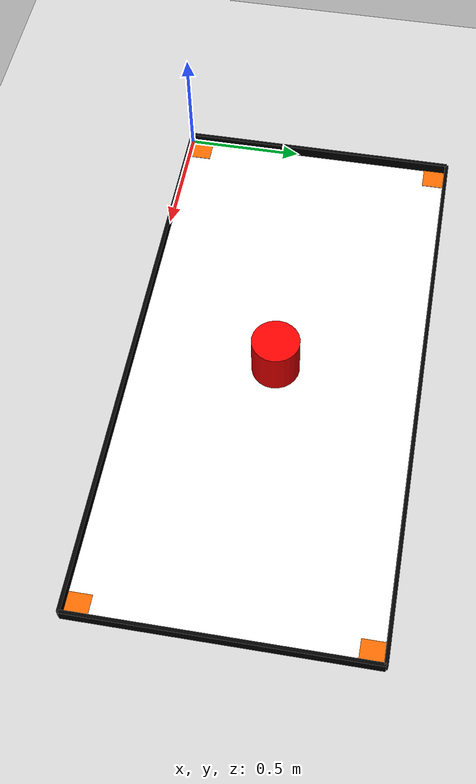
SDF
<?xml version="1.0" ?>
<sdf version="1.6">
  <world name="mazenav_world">

    <!-- Sun & Physics -->
    <include><uri>model://sun</uri></include>
    <include><uri>model://ground_plane</uri></include>

    <!-- 1. MAZE ARENA FLOOR (2.4m x 1.2m Base with Surface Friction) -->
    <model name="maze_floor">
      <static>true</static>
      <pose>1.2 0.6 0.001 0 0 0</pose>
      <link name="link">
        <collision name="collision">
          <geometry><box><size>2.4 1.2 0.002</size></box></geometry>
          <surface>
            <friction>
              <ode>
                <mu>1.0</mu>
                <mu2>1.0</mu2>
              </ode>
            </friction>
          </surface>
        </collision>
        <visual name="visual">
          <geometry><box><size>2.4 1.2 0.001</size></box></geometry>
          <material>
            <ambient>0.95 0.95 0.95 1</ambient>
            <diffuse>0.95 0.95 0.95 1</diffuse>
          </material>
        </visual>
      </link>
    </model>

    <!-- 2. PHYSICAL OUTER BORDER WALLS (2.4m x 1.2m Hard Boundaries) -->
    <model name="wall_top">
      <static>true</static>
      <pose>1.2 1.20 0.025 0 0 0</pose>
      <link name="link">
        <collision name="collision">
          <geometry><box><size>2.4 0.015 0.05</size></box></geometry>
        </collision>
        <visual name="visual">
          <geometry><box><size>2.4 0.015 0.05</size></box></geometry>
          <material><ambient>0 0 0 1</ambient><diffuse>0 0 0 1</diffuse></material>
        </visual>
      </link>
    </model>

    <model name="wall_bottom">
      <static>true</static>
      <pose>1.2 0.00 0.025 0 0 0</pose>
      <link name="link">
        <collision name="collision">
          <geometry><box><size>2.4 0.015 0.05</size></box></geometry>
        </collision>
        <visual name="visual">
          <geometry><box><size>2.4 0.015 0.05</size></box></geometry>
          <material><ambient>0 0 0 1</ambient><diffuse>0 0 0 1</diffuse></material>
        </visual>
      </link>
    </model>

    <model name="wall_left">
      <static>true</static>
      <pose>0.00 0.6 0.025 0 0 0</pose>
      <link name="link">
        <collision name="collision">
          <geometry><box><size>0.015 1.2 0.05</size></box></geometry>
        </collision>
        <visual name="visual">
          <geometry><box><size>0.015 1.2 0.05</size></box></geometry>
          <material><ambient>0 0 0 1</ambient><diffuse>0 0 0 1</diffuse></material>
        </visual>
      </link>
    </model>

    <model name="wall_right">
      <static>true</static>
      <pose>2.40 0.6 0.025 0 0 0</pose>
      <link name="link">
        <collision name="collision">
          <geometry><box><size>0.015 1.2 0.05</size></box></geometry>
        </collision>
        <visual name="visual">
          <geometry><box><size>0.015 1.2 0.05</size></box></geometry>
          <material><ambient>0 0 0 1</ambient><diffuse>0 0 0 1</diffuse></material>
        </visual>
      </link>
    </model>

    <!-- 3. FOUR ORANGE CORNER MARKERS FOR OPENCV PERSPECTIVE WARPING -->
    <model name="warp_marker_tl">
      <static>true</static>
      <pose>0.05 1.15 0.003 0 0 0</pose>
      <link name="link"><visual name="visual">
        <geometry><box><size>0.10 0.10 0.001</size></box></geometry>
        <material><ambient>1.0 0.4 0.0 1</ambient><diffuse>1.0 0.4 0.0 1</diffuse></material>
      </visual></link>
    </model>

    <model name="warp_marker_tr">
      <static>true</static>
      <pose>2.35 1.15 0.003 0 0 0</pose>
      <link name="link"><visual name="visual">
        <geometry><box><size>0.10 0.10 0.001</size></box></geometry>
        <material><ambient>1.0 0.4 0.0 1</ambient><diffuse>1.0 0.4 0.0 1</diffuse></material>
      </visual></link>
    </model>

    <model name="warp_marker_bl">
      <static>true</static>
      <pose>0.05 0.05 0.003 0 0 0</pose>
      <link name="link"><visual name="visual">
        <geometry><box><size>0.10 0.10 0.001</size></box></geometry>
        <material><ambient>1.0 0.4 0.0 1</ambient><diffuse>1.0 0.4 0.0 1</diffuse></material>
      </visual></link>
    </model>

    <model name="warp_marker_br">
      <static>true</static>
      <pose>2.35 0.05 0.003 0 0 0</pose>
      <link name="link"><visual name="visual">
        <geometry><box><size>0.10 0.10 0.001</size></box></geometry>
        <material><ambient>1.0 0.4 0.0 1</ambient><diffuse>1.0 0.4 0.0 1</diffuse></material>
      </visual></link>
    </model>

    <!-- 4. DYNAMIC OBSTACLE MODEL (Red Cylinder) -->
    <model name="dynamic_obstacle">
      <pose>1.20 0.60 0.10 0 0 0</pose>
      <link name="link">
        <inertial>
          <mass>1.0</mass>
          <inertia>
            <ixx>0.01</ixx><ixy>0</ixy><ixz>0</ixz>
            <iyy>0.01</iyy><iyz>0</iyz>
            <izz>0.01</izz>
          </inertia>
        </inertial>
        <collision name="collision">
          <geometry>
            <cylinder>
              <radius>0.10</radius>
              <length>0.20</length>
            </cylinder>
          </geometry>
          <surface>
            <friction>
              <ode>
                <mu>0.0</mu>
                <mu2>0.0</mu2>
              </ode>
            </friction>
          </surface>
        </collision>
        <visual name="visual">
          <geometry>
            <cylinder>
              <radius>0.10</radius>
              <length>0.20</length>
            </cylinder>
          </geometry>
          <material>
            <ambient>1.0 0.0 0.0 1</ambient>
            <diffuse>1.0 0.0 0.0 1</diffuse>
          </material>
        </visual>
      </link>
      <!-- ROS 2 Planar Movement Plugin for Obstacle Control -->
      <plugin name="obstacle_controller" filename="libgazebo_ros_planar_move.so">
        <ros>
          <namespace>/obstacle</namespace>
        </ros>
        <update_rate>30</update_rate>
        <publish_odom>true</publish_odom>
        <publish_odom_tf>true</publish_odom_tf>
      </plugin>
    </model>

    <!-- 5. OVERHEAD IMX335 CAMERA MODEL -->
    <model name="imx335_overhead_cam">
      <static>true</static>
      <pose>1.20 0.60 2.00 0 1.5707963 0</pose>
      <link name="link">
        <sensor type="camera" name="imx335_sensor">
          <update_rate>30.0</update_rate>
          <camera name="imx335">
            <horizontal_fov>0.97507</horizontal_fov>
            <image>
              <width>1280</width>
              <height>720</height>
              <format>R8G8B8</format>
            </image>
            <clip><near>0.1</near><far>10.0</far></clip>
          </camera>
          <plugin name="camera_controller" filename="libgazebo_ros_camera.so">
            <ros>
              <namespace>/overhead</namespace>
              <remapping>image_raw:=imx335/image_raw</remapping>
            </ros>
            <camera_name>imx335</camera_name>
            <frame_name>overhead_cam_link</frame_name>
          </plugin>
        </sensor>
      </link>
    </model>

    <!-- Auto-set GUI View -->
    <gui fullname="default">
      <camera name="user_camera">
        <pose>1.2 0.6 2.5 0 1.5708 0</pose>
        <view_controller>orbit</view_controller>
      </camera>
    </gui>

  </world>
</sdf>
